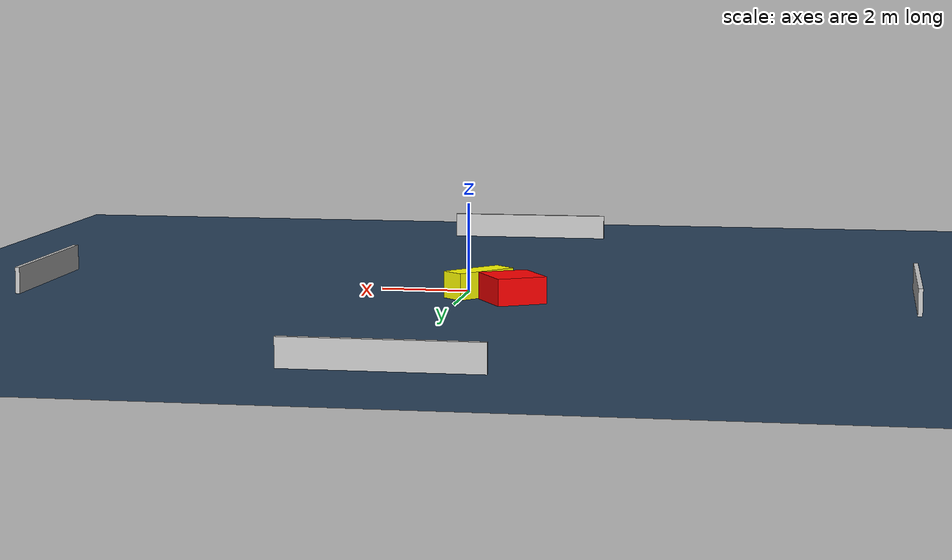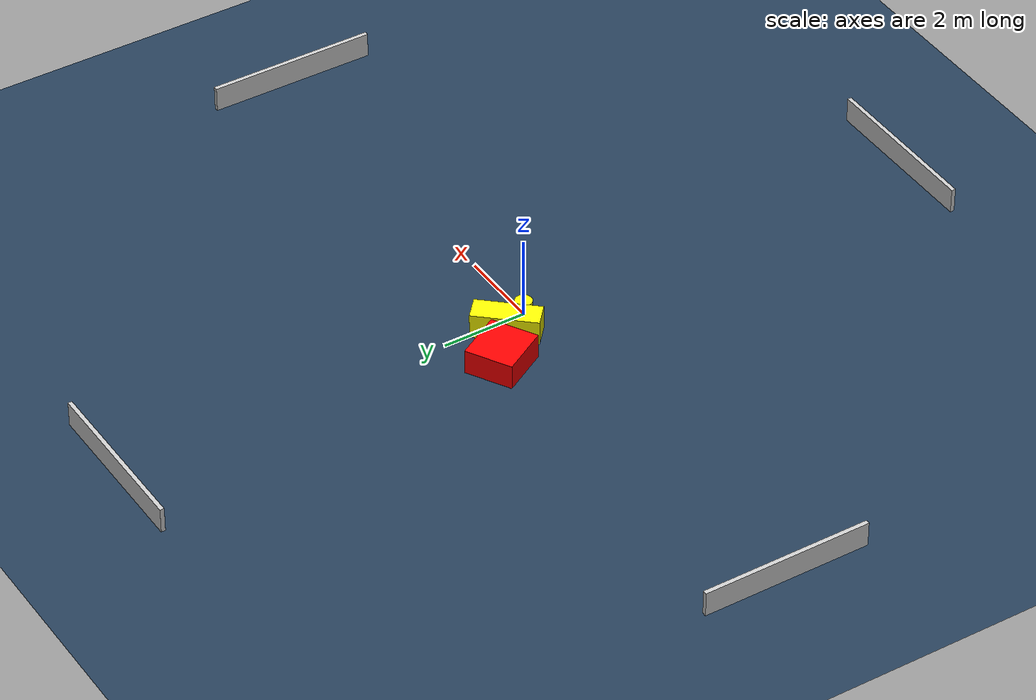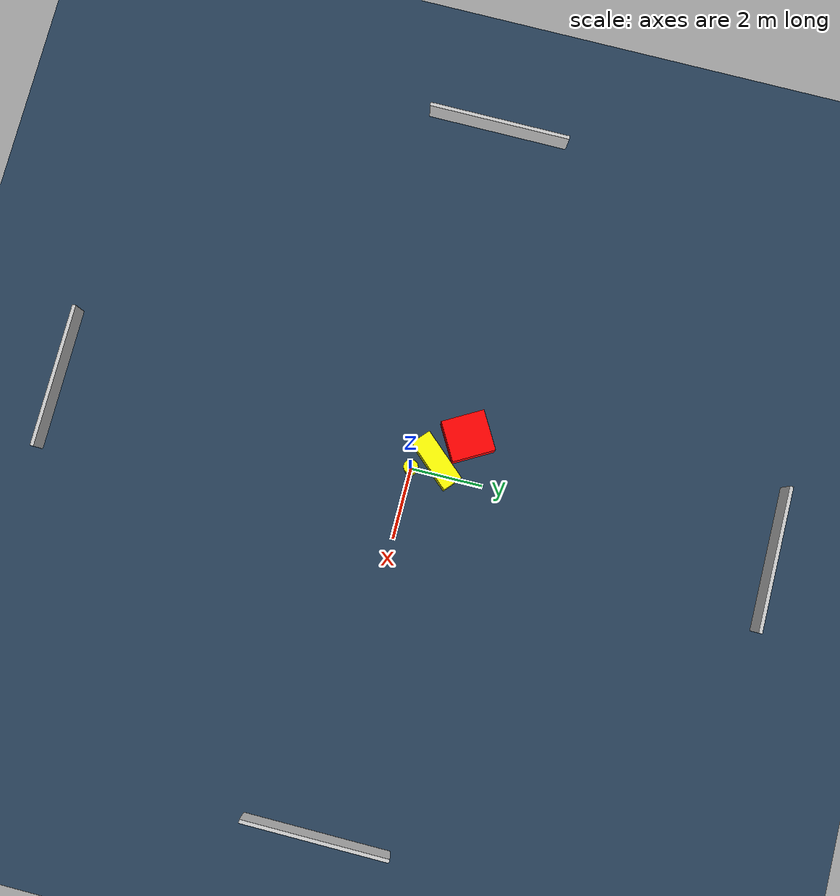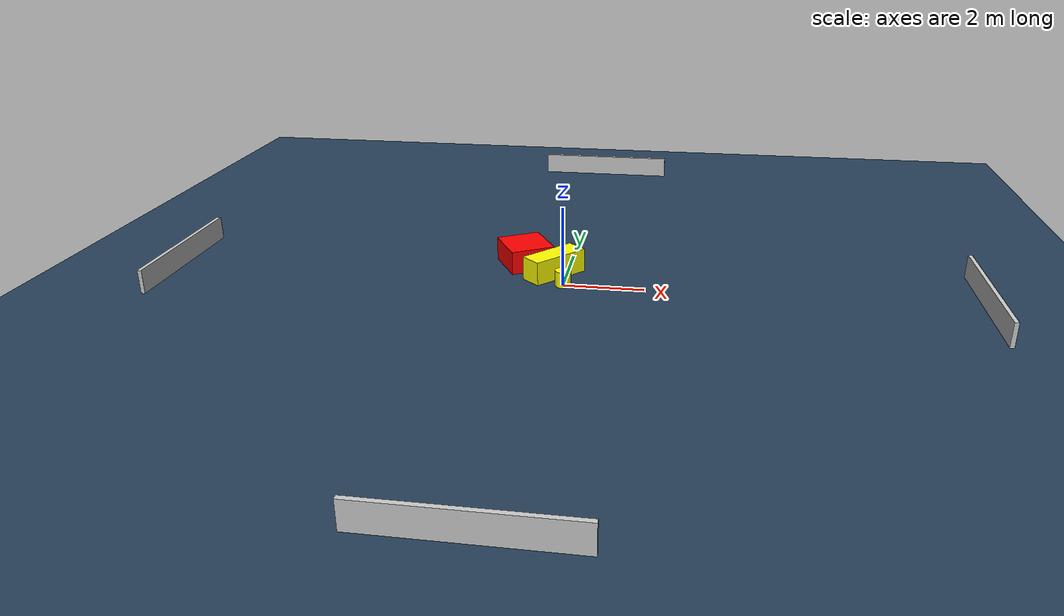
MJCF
<?xml version="1.0" ?>
<mujoco model="generated_environment">
  <option timestep="0.01" integrator="RK4" cone="elliptic"/>
  <default>
    <geom density="1"/>
  </default>
  <asset>
    <texture builtin="gradient" height="3072" name="skybox" rgb1="0.3 0.5 0.7" rgb2="0 0 0" type="skybox" width="512"/>
    <texture builtin="checker" height="300" name="groundplane" rgb1="0.2 0.3 0.4" rgb2="0.1 0.2 0.3" type="2d" width="300"/>
    <material name="groundplane" reflectance="0.2" texrepeat="5 5" texture="groundplane"/>
  </asset>
  <worldbody>
    <light dir="0 0 -1" directional="true" pos="0 0 1.5"/>
    <geom condim="3" friction="0.5 0.005 0.001" material="groundplane" name="floor" pos="0 0 0" size="0 0 0.05" type="plane"/>
    <body name="walls">
      <geom name="wall_1" condim="4" pos="-10.0 0.0 0.3" rgba="0.800000011920929 0.800000011920929 0.800000011920929 1.0" size="0.05 2.0 0.3" type="box"/>
      <geom name="wall_2" condim="4" pos="10.0 0.0 0.3" rgba="0.800000011920929 0.800000011920929 0.800000011920929 1.0" size="0.05 2.0 0.3" type="box"/>
      <geom name="wall_3" condim="4" pos="0.0 -10.0 0.3" rgba="0.800000011920929 0.800000011920929 0.800000011920929 1.0" size="2.0 0.05 0.3" type="box"/>
      <geom name="wall_4" condim="4" pos="0.0 10.0 0.3" rgba="0.800000011920929 0.800000011920929 0.800000011920929 1.0" size="2.0 0.05 0.3" type="box"/>
    </body>
    <body name="robot">
      <joint name="joint_x" type="slide" pos="0 0 0" axis="1 0 0"/>
      <joint name="joint_y" type="slide" pos="0 0 0" axis="0 1 0"/>
      <geom name="robot" type="cylinder" pos="0.0 0.0 0.2" size="0.2 0.2 0.0" mass="5.0" friction="1.0 0.005 0.0001" condim="4" rgba="1.0 1.0 0.0 1.0"/>
    </body>
    <body name="obstacle_1_movable">
      <geom name="obstacle_1_movable" condim="4" pos="-0.32150434054281474 0.6342958314890196 0.3" euler="0 0 138.43784657246934" friction="0.0 0.005 0.001" rgba="1.0 1.0 0.0 1.0" size="0.2865527218497703 0.7660911378946078 0.3" type="box" mass="0.1"/>
      <joint type="free"/>
    </body>
    <body name="obstacle_2_static">
      <geom name="obstacle_2_static" condim="4" pos="-1.1792229598993602 1.2957082632321424 0.3" euler="0 0 209.8751251356006" friction="0.0 0.005 0.001" rgba="1.0 0.0 0.0 1.0" size="0.5699113023936064 0.6009342679833614 0.3" type="box"/>
    </body>
  </worldbody>
  <actuator>
    <motor name="actuator_x" joint="joint_x" gear="1" ctrlrange="-1 1"/>
    <motor name="actuator_y" joint="joint_y" gear="1" ctrlrange="-1 1"/>
  </actuator>
</mujoco>
